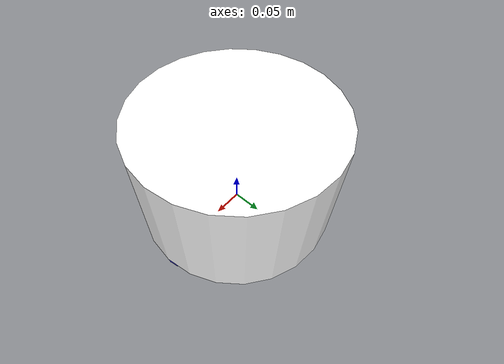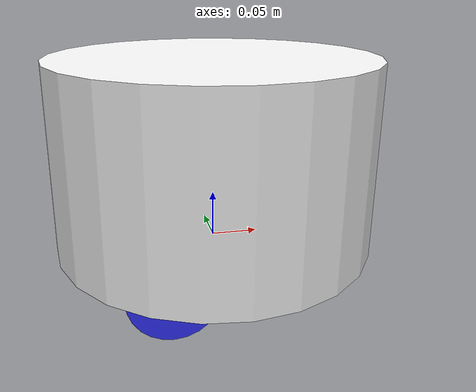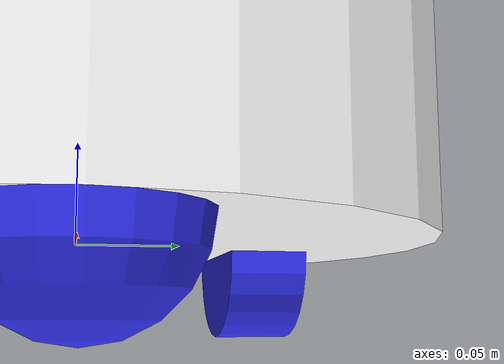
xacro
<?xml version="1.0"?>
<robot xmlns:xacro="http://www.ros.org/wiki/xacro" >

    <xacro:include filename="inertial_macros.xacro"/>

    <material name="white">
        <color rgba="1 1 1 1" />
    </material>

    <material name="orange">
        <color rgba="1 0.3 0.1 1"/>
    </material>

    <material name="blue">
        <color rgba="0.2 0.2 1 1"/>
    </material>

    <material name="black">
        <color rgba="0 0 0 1"/>
    </material>

    <material name="red">
        <color rgba="1 0 0 1"/>
    </material>

    <!-- BASE LINK -->

    <link name="base_link">
    </link>

    <!-- CHASSIS LINK -->

    <joint name="chassis_joint" type="fixed">
        <parent link="base_link"/>
        <child link="chassis"/>
        <origin xyz="-0.170 0 0"/>
    </joint>

    <link name="chassis">
        <visual>
            <origin xyz="0.170 0 0.1"/>
            <geometry>
                <cylinder radius="0.170" length="0.2"/>
            </geometry>
            <material name="white"/>
        </visual>
        <collision>
            <origin xyz="0.170 0 0.1"/>
            <geometry>
                <cylinder radius="0.170" length="0.2"/>
            </geometry>
        </collision>
        <xacro:inertial_cylinder mass="3.9" length="0.170" radius="0.2">
            <origin xyz="0.170 0 0.1" rpy="0 0 0"/>
        </xacro:inertial_cylinder>
    </link>

    <gazebo reference="chassis">
        <material>Gazebo/White</material>
    </gazebo>

    <!-- LEFT WHEEL LINK -->

    <joint name="left_wheel_joint" type="continuous">
        <parent link="base_link"/>
        <child link="left_wheel"/>
        <origin xyz="-0.06 0.1 0" rpy="-${pi/2} 0 0" />
        <axis xyz="0 0 1"/>
    </joint>

    <link name="left_wheel">
        <visual>
            <geometry>
                <cylinder radius="0.045" length="0.04"/>
            </geometry>
            <material name="blue"/>
        </visual>
        <collision>
            <geometry>
                <cylinder radius="0.045" length="0.04"/>
            </geometry>
        </collision>
        <xacro:inertial_cylinder mass="0.1" length="0.04" radius="0.045">
            <origin xyz="0 0 0" rpy="0 0 0"/>
        </xacro:inertial_cylinder>
    </link>

    <gazebo reference="left_wheel">
        <material>Gazebo/Blue</material>
        <collision>
            <surface>
                <friction>
                    <ode>
                        <mu>0.5</mu>
                        <mu2>0.5</mu2>
                    </ode>
                </friction>
            </surface>
        </collision>
    </gazebo>

    <!-- RIGHT WHEEL LINK -->

    <joint name="right_wheel_joint" type="continuous">
        <parent link="base_link"/>
        <child link="right_wheel"/>
        <origin xyz="-0.06 -0.1 0" rpy="${pi/2} 0 0" />
        <axis xyz="0 0 -1"/>
    </joint>

    <link name="right_wheel">
        <visual>
            <geometry>
                <cylinder radius="0.045" length="0.04"/>
            </geometry>
            <material name="blue"/>
        </visual>
        <collision>
            <geometry>
                <cylinder radius="0.045" length="0.04"/>
            </geometry>
        </collision>
        <xacro:inertial_cylinder mass="0.1" length="0.04" radius="0.045">
            <origin xyz="0 0 0" rpy="0 0 0"/>
        </xacro:inertial_cylinder>
    </link>

    <gazebo reference="right_wheel">
        <material>Gazebo/Blue</material>
        <collision>
            <surface>
                <friction>
                    <ode>
                        <mu>0.5</mu>
                        <mu2>0.5</mu2>
                    </ode>
                </friction>
            </surface>
        </collision>
    </gazebo>

    <!-- CASTER WHEEL LINK -->

    <joint name="caster_wheel_joint" type="fixed">
        <parent link="chassis"/>
        <child link="caster_wheel"/>
        <origin xyz="0.295 0 0"/>
    </joint>

    <link name="caster_wheel">
        <visual>
            <geometry>
                <sphere radius="0.045"/>
            </geometry>
            <material name="blue"/>
        </visual>
        <collision>
            <geometry>
                <sphere radius="0.045"/>
            </geometry>
        </collision>
        <xacro:inertial_sphere mass="0.1" radius="0.045">
            <origin xyz="0 0 0" rpy="0 0 0"/>
        </xacro:inertial_sphere>
    </link>

    <gazebo reference="caster_wheel">
        <material>Gazebo/Blue</material>
        <collision>
            <surface>
                <friction>
                    <ode>
                        <mu>0.001</mu> <!-- value range 0.0 to 1.0 -->
                        <mu2>0.001</mu2> <!-- value range 0.0 to 1.0 -->
                    </ode>
                </friction>
            </surface>
        </collision>
    </gazebo>
</robot>
